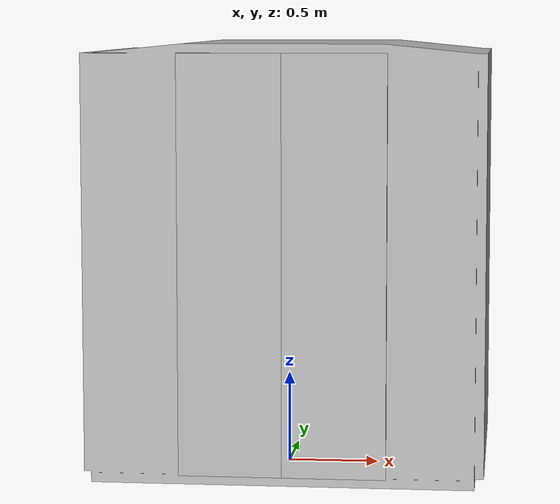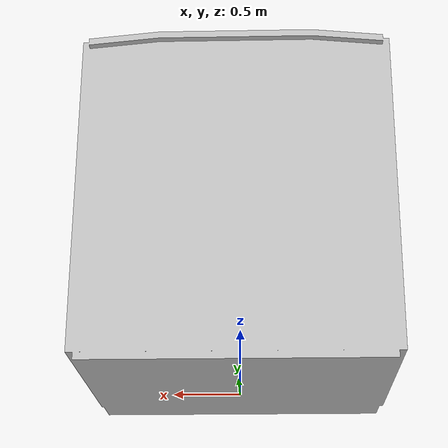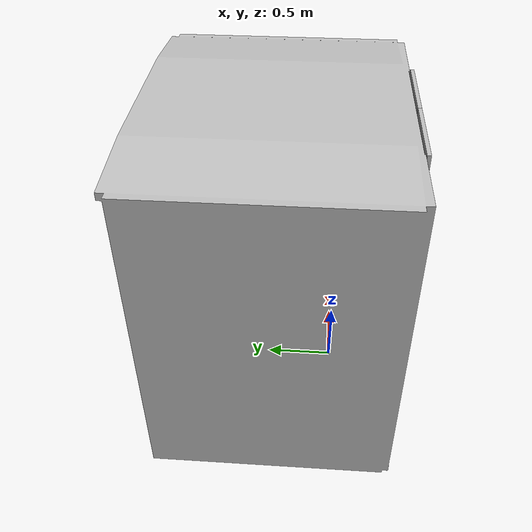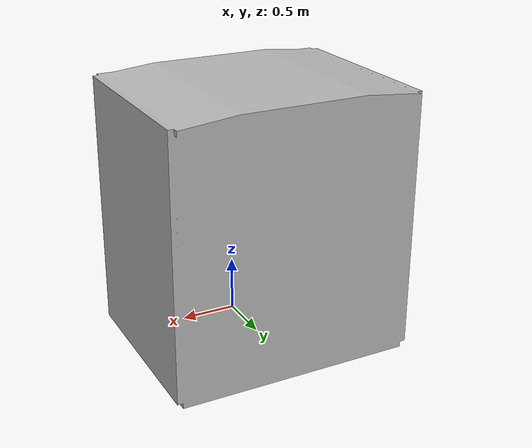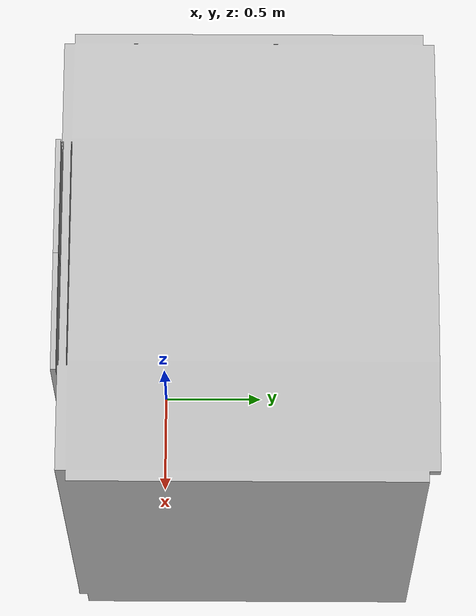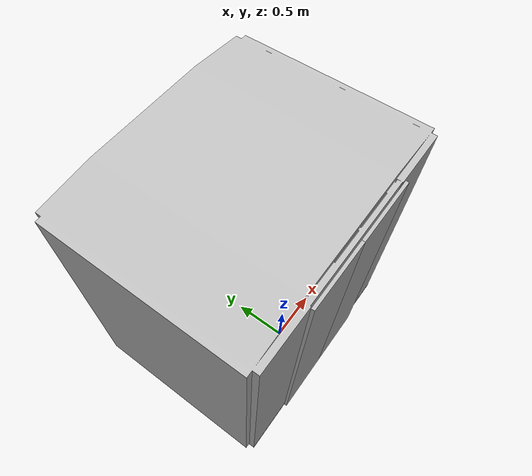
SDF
<?xml version='1.0'?>
<sdf version='1.6'>
<model name='seocho_EV'>
  <allow_auto_disable>1</allow_auto_disable>
  <link name='floor'>
    <kinematic>1</kinematic>
    <gravity>0</gravity>

    <collision name='floor_collision'>
      <geometry>
        <mesh>
          <scale>0.1 0.1 0.1</scale>
          <uri>model://seocho_EV/meshes/EV_col.obj</uri>
        </mesh>
      </geometry>
    </collision>

    <visual name='floor_visual'>
      <geometry>
        <mesh>
          <scale>0.1 0.1 0.1</scale>
          <uri>model://seocho_EV/meshes/EV.obj</uri>
        </mesh>
      </geometry>
      <material>
        <emissive>0.02 0.02 0.02 1</emissive>
      </material>
    </visual>
  </link>

  <model name='door'>
    <static>1</static>
    <allow_auto_disable>1</allow_auto_disable>
    <pose>0.00428 -0.44789 -0.00088 0 0 0</pose>
    <link name='seocho_EV_door_L_link'>
      <collision name='collision'>
        <geometry>
          <mesh>
            <scale>0.1 0.1 0.1</scale>
            <uri>model://seocho_EV/meshes/EV_door_L_col.obj</uri>
          </mesh>
        </geometry>
      </collision>
      <visual name='visual'>
        <geometry>
          <mesh>
            <scale>0.1 0.1 0.1</scale>
            <uri>model://seocho_EV/meshes/EV_door_L_in.obj</uri>
          </mesh>
        </geometry>
        <material>
          <emissive>0.02 0.02 0.02 1</emissive>
        </material>
      </visual>
    </link>
    <link name='seocho_EV_door_R_link'>
      <collision name='collision'>
        <geometry>
          <mesh>
            <scale>0.1 0.1 0.1</scale>
            <uri>model://seocho_EV/meshes/EV_door_R_col.obj</uri>
          </mesh>
        </geometry>
      </collision>
      <visual name='visual'>
        <geometry>
          <mesh>
            <scale>0.1 0.1 0.1</scale>
            <uri>model://seocho_EV/meshes/EV_door_R_in.obj</uri>
          </mesh>
        </geometry>
        <material>
          <emissive>0.02 0.02 0.02 1</emissive>
        </material>
      </visual>
    </link>
  </model>
</model>
</sdf>
